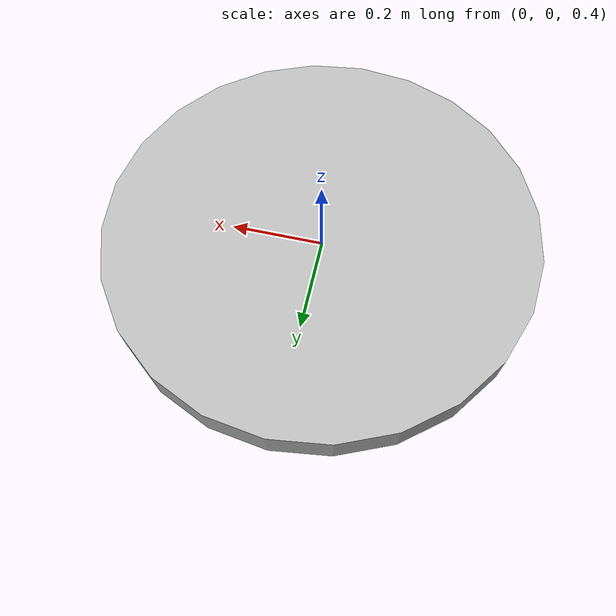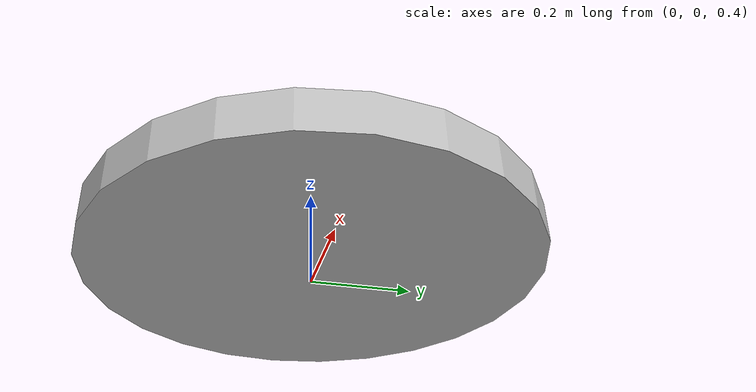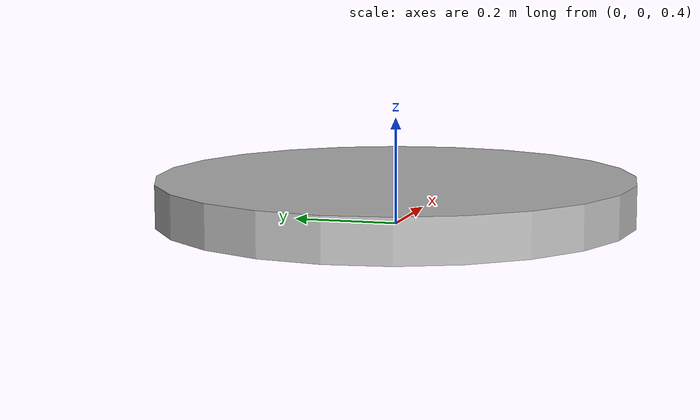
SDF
<?xml version="1.0" ?>
<sdf version="1.6">
  <model name="rwc2024/coffee_table">
    <static>true</static>
    <link name="1_link">
      <collision name="1_col">
        <geometry>
            <cylinder>
                <radius>0.45</radius>
                <length>0.08</length>
            </cylinder>
        </geometry>
      </collision>
      <visual name="1_vis">
        <geometry>
            <cylinder>
                <radius>0.45</radius>
                <length>0.08</length>
            </cylinder>
        </geometry>
      </visual>
      <pose>0.0 0.0 0.45 0 0 0</pose>
    </link>
    <link name="on_top_of">
      <virtual_volume name="on_top_of_vv">
        <geometry>
          <cylinder>
            <length>0.25</length>
            <radius>0.44</radius>
          </cylinder>
        </geometry>
      </virtual_volume>
      <pose>0 0 0.575 0 0 0</pose>
    </link>
    <link name="in_front_of">
      <virtual_volume name="in_front_of_vv">
        <geometry>
          <box>
            <size>0.2 0.35 0.01</size>
          </box>
        </geometry>
      </virtual_volume>
      <pose>0.9 0. 0.005 0 0 0</pose>
    </link>
    <static>true</static>

  </model>
</sdf>
